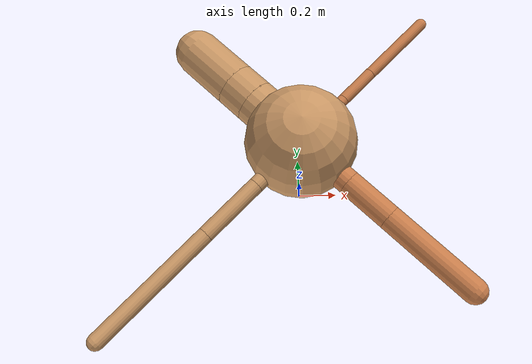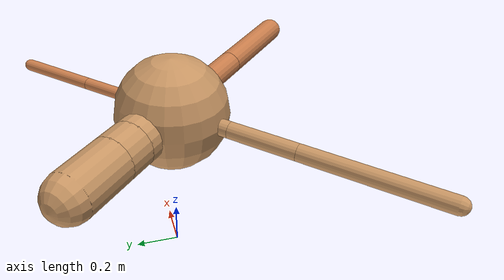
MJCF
<?xml version="1.0" ?>
<mujoco model="ant">

	<compiler angle="degree" coordinate="local" inertiafromgeom="true"/>

	<option integrator="RK4" timestep="0.01"/>

	<custom>

		<numeric data="0.0 0.0 0.55 1.0 0.0 0.0 0.0 0.0 1.0 0.0 -1.0 0.0 -1.0 0.0 1.0" name="init_qpos"/>

	</custom>

	<default>

		<joint armature="1" damping="1" limited="true"/>

		<geom conaffinity="0" condim="3" density="5.0" friction="1.5 0.1 0.1" margin="0.01" rgba="0.8 0.6 0.4 1"/>

	</default>

	<worldbody>

		<body name="torso" pos="0 0 0.75">

			<geom name="torso_geom" pos="0 0 0" size="0.2504676927085771" type="sphere"/>

			<!--joint armature="0" damping="0" limited="false" margin="0.01" name="root" pos="0 0 0" type="free"/-->

			<body name="front_left_leg" pos="0 0 0">

				<geom fromto="0 0 0 0.2 0.2 0" name="aux_1_geom" size="0.026861307404755827" type="capsule" rgba=".8 .5 .3 1"/>

				<body name="aux_1" pos="0.2 0.2 0">

					<joint axis="0 0 1" name="hip_1" pos="0.0 0.0 0.0" range="-40 40" type="hinge"/>

					<geom fromto="0 0 0 0.12796275771588492 0.12796275771588492 0" name="left_leg_geom" size="0.026861307404755827" type="capsule" rgba=".8 .5 .3 1"/>

					<body pos="0.12796275771588492 0.12796275771588492 0" name="front_left_foot">

						<joint axis="-1 1 0" name="ankle_1" pos="0.0 0.0 0.0" range="30 100" type="hinge"/>

						<geom fromto="0 0 0 0.25592551543176983 0.25592551543176983 0" name="left_ankle_geom" size="0.026861307404755827" type="capsule" rgba=".8 .5 .3 1"/>

					</body>

				</body>

			</body>

			<body name="front_right_leg" pos="0 0 0">

				<geom fromto="0 0 0 -0.2 0.2 0" name="aux_2_geom" size="0.10525667644756084" type="capsule"/>

				<body name="aux_2" pos="-0.2 0.2 0">

					<joint axis="0 0 1" name="hip_2" pos="0.0 0.0 0.0" range="-40 40" type="hinge"/>

					<geom fromto="0 0 0 -0.0861092174202909 0.0861092174202909 0" name="right_leg_geom" size="0.10525667644756084" type="capsule"/>

					<body pos="-0.0861092174202909 0.0861092174202909 0" name="front_right_foot">

						<joint axis="1 1 0" name="ankle_2" pos="0.0 0.0 0.0" range="-100 -30" type="hinge"/>

						<geom fromto="0 0 0 -0.1722184348405818 0.1722184348405818 0" name="right_ankle_geom" size="0.10525667644756084" type="capsule"/>

					</body>

				</body>

			</body>

			<body name="left_back_leg" pos="0 0 0">

				<geom fromto="0 0 0 -0.2 -0.2 0" name="aux_3_geom" size="0.03652759478968329" type="capsule"/>

				<body name="aux_3" pos="-0.2 -0.2 0">

					<joint axis="0 0 1" name="hip_3" pos="0.0 0.0 0.0" range="-40 40" type="hinge"/>

					<geom fromto="0 0 0 -0.2123073646549517 -0.2123073646549517 0" name="back_leg_geom" size="0.03652759478968329" type="capsule"/>

					<body pos="-0.2123073646549517 -0.2123073646549517 0" name="left_back_foot">

						<joint axis="-1 1 0" name="ankle_3" pos="0.0 0.0 0.0" range="-100 -30" type="hinge"/>

						<geom fromto="0 0 0 -0.4246147293099034 -0.4246147293099034 0" name="third_ankle_geom" size="0.03652759478968329" type="capsule"/>

					</body>

				</body>

			</body>

			<body name="right_back_leg" pos="0 0 0">

				<geom fromto="0 0 0 0.2 -0.2 0" name="aux_4_geom" size="0.05621049435309919" type="capsule" rgba=".8 .5 .3 1"/>

				<body name="aux_4" pos="0.2 -0.2 0">

					<joint axis="0 0 1" name="hip_4" pos="0.0 0.0 0.0" range="-40 40" type="hinge"/>

					<geom fromto="0 0 0 0.15970734869470957 -0.15970734869470957 0" name="rightback_leg_geom" size="0.05621049435309919" type="capsule" rgba=".8 .5 .3 1"/>

					<body pos="0.15970734869470957 -0.15970734869470957 0" name="right_back_foot">

						<joint axis="1 1 0" name="ankle_4" pos="0.0 0.0 0.0" range="30 100" type="hinge"/>

						<geom fromto="0 0 0 0.31941469738941913 -0.31941469738941913 0" name="fourth_ankle_geom" size="0.05621049435309919" type="capsule" rgba=".8 .5 .3 1"/>

					</body>

				</body>

			</body>

		</body>

	</worldbody>

	<actuator>

		<motor ctrllimited="true" ctrlrange="-1.0 1.0" joint="hip_4" gear="150"/>

		<motor ctrllimited="true" ctrlrange="-1.0 1.0" joint="ankle_4" gear="150"/>

		<motor ctrllimited="true" ctrlrange="-1.0 1.0" joint="hip_1" gear="150"/>

		<motor ctrllimited="true" ctrlrange="-1.0 1.0" joint="ankle_1" gear="150"/>

		<motor ctrllimited="true" ctrlrange="-1.0 1.0" joint="hip_2" gear="150"/>

		<motor ctrllimited="true" ctrlrange="-1.0 1.0" joint="ankle_2" gear="150"/>

		<motor ctrllimited="true" ctrlrange="-1.0 1.0" joint="hip_3" gear="150"/>

		<motor ctrllimited="true" ctrlrange="-1.0 1.0" joint="ankle_3" gear="150"/>

	</actuator>

</mujoco>
